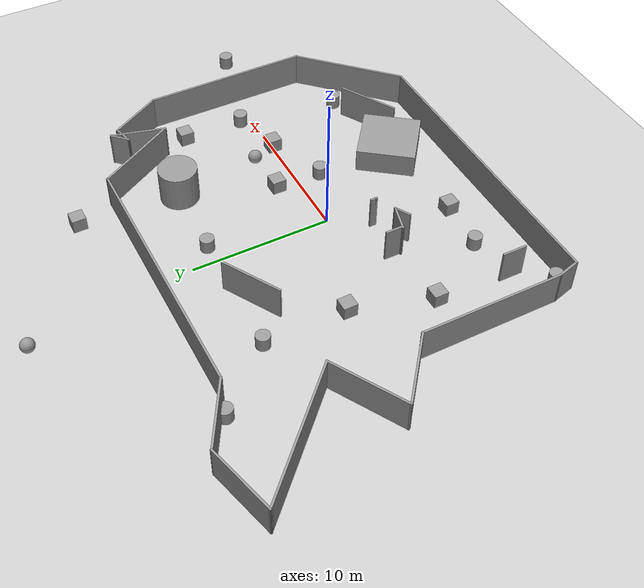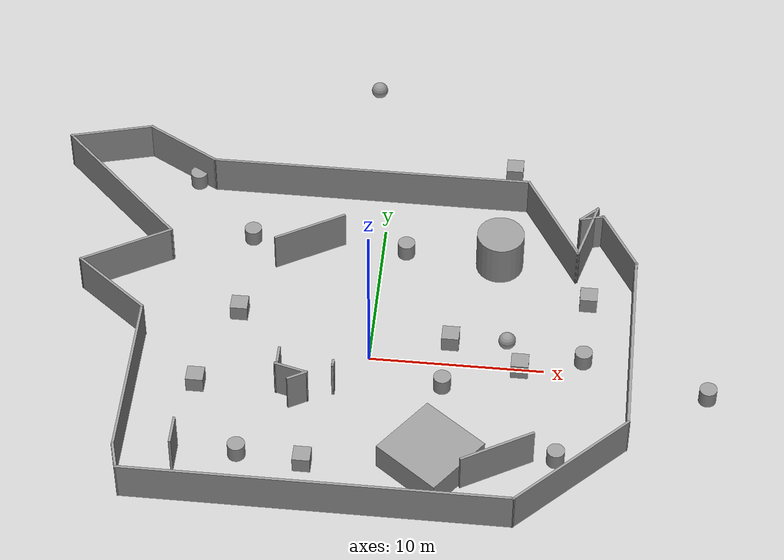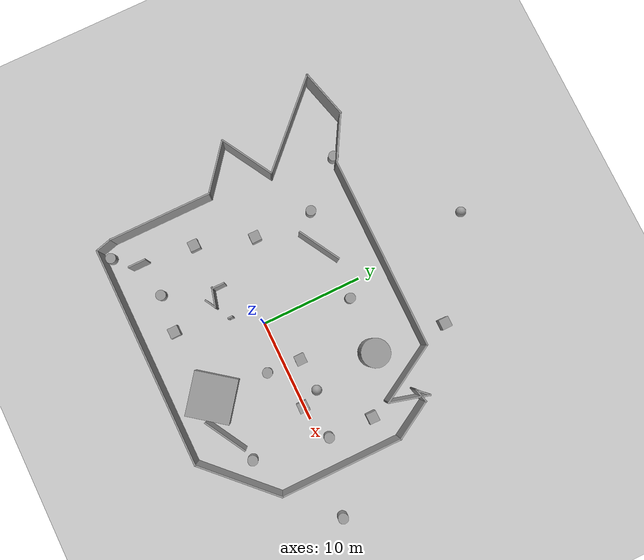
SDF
<sdf version="1.7">
 <world name="default">
  <light name="sun" type="directional">
   <pose>0 0 10 0 -0 0</pose>
   <diffuse>0.8 0.8 0.8 1</diffuse>
   <specular>0.2 0.2 0.2 1</specular>
   <attenuation>
    <range>1000</range>
    <constant>0.9</constant>
    <linear>0.01</linear>
    <quadratic>0.001</quadratic>
   </attenuation>
   <direction>-0.5 0.1 -0.9</direction>
   <spot><inner_angle>0</inner_angle><outer_angle>0</outer_angle><falloff>0</falloff></spot>
  </light>
  <model name="ground_plane">
   <static>1</static>
   <link name="link">
    <collision name="collision">
     <geometry><plane><normal>0 0 1</normal><size>100 100</size></plane></geometry>
     <surface>
      <contact><collide_bitmask>65535</collide_bitmask></contact>
      <friction><ode><mu>100</mu><mu2>50</mu2></ode></friction>
     </surface>
    </collision>
    <visual name="visual">
     <cast_shadows>0</cast_shadows>
     <geometry><plane><normal>0 0 1</normal><size>100 100</size></plane></geometry>
     <material>
      <script><uri>file://media/materials/scripts/gazebo.material</uri><name>Gazebo/Grey</name></script>
     </material>
    </visual>
   </link>
  </model>
  <gravity>0 0 -9.8</gravity>
  <magnetic_field>6e-06 2.3e-05 -4.2e-05</magnetic_field>
  <atmosphere type="adiabatic"/>
  <physics type="ode">
   <max_step_size>0.001</max_step_size>
   <real_time_factor>1</real_time_factor>
   <real_time_update_rate>1000</real_time_update_rate>
  </physics>
  <scene><ambient>0.4 0.4 0.4 1</ambient><background>0.7 0.7 0.7 1</background><shadows>1</shadows></scene>
  <spherical_coordinates>
   <surface_model>EARTH_WGS84</surface_model>
   <latitude_deg>0</latitude_deg>
   <longitude_deg>0</longitude_deg>
   <elevation>0</elevation>
   <heading_deg>0</heading_deg>
  </spherical_coordinates>
  <model name="unit_box">
   <pose>4.5393 1.58874 0.499995 0 -1e-05 0</pose>
   <link name="link">
    <inertial>
     <mass>1</mass>
     <inertia>
      <ixx>0.166667</ixx>
      <ixy>0</ixy>
      <ixz>0</ixz>
      <iyy>0.166667</iyy>
      <iyz>0</iyz>
      <izz>0.166667</izz>
     </inertia>
    </inertial>
    <collision name="collision"><geometry><box><size>1 1 1</size></box></geometry></collision>
    <visual name="visual">
     <geometry><box><size>1 1 1</size></box></geometry>
     <material>
      <script><name>Gazebo/Grey</name><uri>file://media/materials/scripts/gazebo.material</uri></script>
     </material>
    </visual>
   </link>
  </model>
  <model name="unit_cylinder">
   <pose>4.3301 -1.73186 0.499994 -4e-06 -3e-06 -0</pose>
   <link name="link">
    <inertial>
     <mass>1</mass>
     <inertia><ixx>0.145833</ixx><ixy>0</ixy><ixz>0</ixz><iyy>0.145833</iyy><iyz>0</iyz><izz>0.125</izz></inertia>
    </inertial>
    <collision name="collision">
     <geometry><cylinder><radius>0.5</radius><length>1</length></cylinder></geometry>
    </collision>
    <visual name="visual">
     <geometry><cylinder><radius>0.5</radius><length>1</length></cylinder></geometry>
     <material>
      <script><name>Gazebo/Grey</name><uri>file://media/materials/scripts/gazebo.material</uri></script>
     </material>
    </visual>
   </link>
  </model>
  <model name="unit_sphere">
   <pose>7.78616 1.73401 0.5 0 -0 0</pose>
   <link name="link">
    <inertial>
     <mass>1</mass>
     <inertia><ixx>0.1</ixx><ixy>0</ixy><ixz>0</ixz><iyy>0.1</iyy><iyz>0</iyz><izz>0.1</izz></inertia>
    </inertial>
    <collision name="collision"><geometry><sphere><radius>0.5</radius></sphere></geometry></collision>
    <visual name="visual">
     <geometry><sphere><radius>0.5</radius></sphere></geometry>
     <material>
      <script><name>Gazebo/Grey</name><uri>file://media/materials/scripts/gazebo.material</uri></script>
     </material>
    </visual>
   </link>
  </model>
  <model name="unit_box_0">
   <pose>8.61643 -0.081515 0.499995 -1e-05 -0 -0</pose>
   <link name="link">
    <inertial>
     <mass>1</mass>
     <inertia>
      <ixx>0.166667</ixx>
      <ixy>0</ixy>
      <ixz>0</ixz>
      <iyy>0.166667</iyy>
      <iyz>0</iyz>
      <izz>0.166667</izz>
     </inertia>
    </inertial>
    <collision name="collision"><geometry><box><size>1 1 1</size></box></geometry></collision>
    <visual name="visual">
     <geometry><box><size>1 1 1</size></box></geometry>
     <material>
      <script><name>Gazebo/Grey</name><uri>file://media/materials/scripts/gazebo.material</uri></script>
     </material>
    </visual>
   </link>
  </model>
  <model name="unit_cylinder_0">
   <pose>12.195 0.879591 0.499991 -2e-06 -1e-06 -0.002784</pose>
   <link name="link">
    <inertial>
     <mass>1</mass>
     <inertia><ixx>0.145833</ixx><ixy>0</ixy><ixz>0</ixz><iyy>0.145833</iyy><iyz>0</iyz><izz>0.125</izz></inertia>
    </inertial>
    <collision name="collision">
     <geometry><cylinder><radius>0.5</radius><length>1</length></cylinder></geometry>
    </collision>
    <visual name="visual">
     <geometry><cylinder><radius>0.5</radius><length>1</length></cylinder></geometry>
     <material>
      <script><name>Gazebo/Grey</name><uri>file://media/materials/scripts/gazebo.material</uri></script>
     </material>
    </visual>
   </link>
  </model>
  <model name="unit_box_1">
   <pose>12.2691 5.33119 0.499995 0 -1e-05 0</pose>
   <link name="link">
    <inertial>
     <mass>1</mass>
     <inertia>
      <ixx>0.166667</ixx>
      <ixy>0</ixy>
      <ixz>0</ixz>
      <iyy>0.166667</iyy>
      <iyz>0</iyz>
      <izz>0.166667</izz>
     </inertia>
    </inertial>
    <collision name="collision"><geometry><box><size>1 1 1</size></box></geometry></collision>
    <visual name="visual">
     <geometry><box><size>1 1 1</size></box></geometry>
     <material>
      <script><name>Gazebo/Grey</name><uri>file://media/materials/scripts/gazebo.material</uri></script>
     </material>
    </visual>
   </link>
  </model>
  <model name="unit_cylinder_1">
   <pose>11.0125 -6.40665 0.499996 4e-06 3e-06 -0</pose>
   <link name="link">
    <inertial>
     <mass>1</mass>
     <inertia><ixx>0.145833</ixx><ixy>0</ixy><ixz>0</ixz><iyy>0.145833</iyy><iyz>0</iyz><izz>0.125</izz></inertia>
    </inertial>
    <collision name="collision">
     <geometry><cylinder><radius>0.5</radius><length>1</length></cylinder></geometry>
    </collision>
    <visual name="visual">
     <geometry><cylinder><radius>0.5</radius><length>1</length></cylinder></geometry>
     <material>
      <script><name>Gazebo/Grey</name><uri>file://media/materials/scripts/gazebo.material</uri></script>
     </material>
    </visual>
   </link>
  </model>
  <model name="unit_cylinder_2">
   <pose>6.91652 8.01315 1.32166 0 -0 5e-06</pose>
   <link name="link">
    <inertial>
     <mass>1</mass>
     <inertia><ixx>0.145833</ixx><ixy>0</ixy><ixz>0</ixz><iyy>0.145833</iyy><iyz>0</iyz><izz>0.125</izz></inertia>
    </inertial>
    <collision name="collision">
     <geometry><cylinder><radius>1.38345</radius><length>2.64333</length></cylinder></geometry>
    </collision>
    <visual name="visual">
     <geometry><cylinder><radius>1.38345</radius><length>2.64333</length></cylinder></geometry>
     <material>
      <script><name>Gazebo/Grey</name><uri>file://media/materials/scripts/gazebo.material</uri></script>
     </material>
    </visual>
   </link>
  </model>
  <model name="unit_box_2">
   <pose>4.14628 -7.29838 0.865018 0 8e-06 -0.648429</pose>
   <link name="link">
    <inertial>
     <mass>1</mass>
     <inertia>
      <ixx>0.166667</ixx>
      <ixy>0</ixy>
      <ixz>0</ixz>
      <iyy>0.166667</iyy>
      <iyz>0</iyz>
      <izz>0.166667</izz>
     </inertia>
    </inertial>
    <collision name="collision"><geometry><box><size>4.27196 4.19667 1.73007</size></box></geometry></collision>
    <visual name="visual">
     <geometry><box><size>4.27196 4.19667 1.73007</size></box></geometry>
     <material>
      <script><name>Gazebo/Grey</name><uri>file://media/materials/scripts/gazebo.material</uri></script>
     </material>
    </visual>
   </link>
  </model>
  <model name="unit_cylinder_6">
   <pose>-11.822 -10.5105 0.499998 3e-06 -2e-06 0</pose>
   <link name="link">
    <inertial>
     <mass>1</mass>
     <inertia><ixx>0.145833</ixx><ixy>0</ixy><ixz>0</ixz><iyy>0.145833</iyy><iyz>0</iyz><izz>0.125</izz></inertia>
    </inertial>
    <collision name="collision">
     <geometry><cylinder><radius>0.5</radius><length>1</length></cylinder></geometry>
    </collision>
    <visual name="visual">
     <geometry><cylinder><radius>0.5</radius><length>1</length></cylinder></geometry>
     <material>
      <script><name>Gazebo/Grey</name><uri>file://media/materials/scripts/gazebo.material</uri></script>
     </material>
    </visual>
   </link>
  </model>
  <model name="unit_box_6">
   <pose>-9.57728 -2.87876 0.499995 0 1e-05 0</pose>
   <link name="link">
    <inertial>
     <mass>1</mass>
     <inertia>
      <ixx>0.166667</ixx>
      <ixy>0</ixy>
      <ixz>0</ixz>
      <iyy>0.166667</iyy>
      <iyz>0</iyz>
      <izz>0.166667</izz>
     </inertia>
    </inertial>
    <collision name="collision"><geometry><box><size>1 1 1</size></box></geometry></collision>
    <visual name="visual">
     <geometry><box><size>1 1 1</size></box></geometry>
     <material>
      <script><name>Gazebo/Grey</name><uri>file://media/materials/scripts/gazebo.material</uri></script>
     </material>
    </visual>
   </link>
  </model>
  <model name="unit_cylinder_7">
   <pose>-11.6369 12.8818 0.499998 3e-06 -2e-06 0</pose>
   <link name="link">
    <inertial>
     <mass>1</mass>
     <inertia><ixx>0.145833</ixx><ixy>0</ixy><ixz>0</ixz><iyy>0.145833</iyy><iyz>0</iyz><izz>0.125</izz></inertia>
    </inertial>
    <collision name="collision">
     <geometry><cylinder><radius>0.5</radius><length>1</length></cylinder></geometry>
    </collision>
    <visual name="visual">
     <geometry><cylinder><radius>0.5</radius><length>1</length></cylinder></geometry>
     <material>
      <script><name>Gazebo/Grey</name><uri>file://media/materials/scripts/gazebo.material</uri></script>
     </material>
    </visual>
   </link>
  </model>
  <model name="Untitled_0">
   <pose>-2.30018 1.95615 0 0 -0 0</pose>
   <link name="Wall_0">
    <collision name="Wall_0_Collision">
     <geometry><box><size>0.5 0.15 2.5</size></box></geometry>
     <pose>0 0 1.25 0 -0 0</pose>
    </collision>
    <visual name="Wall_0_Visual">
     <pose>0 0 1.25 0 -0 0</pose>
     <geometry><box><size>0.5 0.15 2.5</size></box></geometry>
     <material>
      <script><uri>file://media/materials/scripts/gazebo.material</uri><name>Gazebo/Grey</name></script>
      <ambient>1 1 1 1</ambient>
     </material>
     <meta><layer>0</layer></meta>
    </visual>
    <pose>0.540176 -4.55115 0 0 -0 -1.5708</pose>
   </link>
   <link name="Wall_1">
    <collision name="Wall_1_Collision">
     <geometry><box><size>0.15 0.15 2.5</size></box></geometry>
     <pose>0 0 1.25 0 -0 0</pose>
    </collision>
    <visual name="Wall_1_Visual">
     <pose>0 0 1.25 0 -0 0</pose>
     <geometry><box><size>0.15 0.15 2.5</size></box></geometry>
     <material>
      <script><uri>file://media/materials/scripts/gazebo.material</uri><name>Gazebo/Grey</name></script>
      <ambient>0 0 0 1</ambient>
     </material>
     <meta><layer>0</layer></meta>
    </visual>
    <pose>0.540176 -4.72615 0 0 -0 0</pose>
   </link>
   <link name="Wall_10">
    <collision name="Wall_10_Collision">
     <geometry><box><size>21.75 0.15 2.5</size></box></geometry>
     <pose>0 0 1.25 0 -0 0</pose>
    </collision>
    <visual name="Wall_10_Visual">
     <pose>0 0 1.25 0 -0 0</pose>
     <geometry><box><size>21.75 0.15 2.5</size></box></geometry>
     <material>
      <script><uri>file://media/materials/scripts/gazebo.material</uri><name>Gazebo/Grey</name></script>
      <ambient>1 1 1 1</ambient>
     </material>
     <meta><layer>0</layer></meta>
    </visual>
    <pose>0.448569 -13.056 0 0 -0 0</pose>
   </link>
   <link name="Wall_11">
    <collision name="Wall_11_Collision">
     <geometry><box><size>8.5 0.15 2.5</size></box></geometry>
     <pose>0 0 1.25 0 -0 0</pose>
    </collision>
    <visual name="Wall_11_Visual">
     <pose>0 0 1.25 0 -0 0</pose>
     <geometry><box><size>8.5 0.15 2.5</size></box></geometry>
     <material>
      <script><uri>file://media/materials/scripts/gazebo.material</uri><name>Gazebo/Grey</name></script>
      <ambient>1 1 1 1</ambient>
     </material>
     <meta><layer>0</layer></meta>
    </visual>
    <pose>14.2007 -10.1039 0 0 -0 0.785398</pose>
   </link>
   <link name="Wall_12">
    <collision name="Wall_12_Collision">
     <geometry><box><size>12 0.15 2.5</size></box></geometry>
     <pose>0 0 1.25 0 -0 0</pose>
    </collision>
    <visual name="Wall_12_Visual">
     <pose>0 0 1.25 0 -0 0</pose>
     <geometry><box><size>12 0.15 2.5</size></box></geometry>
     <material>
      <script><uri>file://media/materials/scripts/gazebo.material</uri><name>Gazebo/Grey</name></script>
      <ambient>1 1 1 1</ambient>
     </material>
     <meta><layer>0</layer></meta>
    </visual>
    <pose>17.1529 -1.22669 0 0 -0 1.5708</pose>
   </link>
   <link name="Wall_13">
    <collision name="Wall_13_Collision">
     <geometry><box><size>4.25 0.15 2.5</size></box></geometry>
     <pose>0 0 1.25 0 -0 0</pose>
    </collision>
    <visual name="Wall_13_Visual">
     <pose>0 0 1.25 0 -0 0</pose>
     <geometry><box><size>4.25 0.15 2.5</size></box></geometry>
     <material>
      <script><uri>file://media/materials/scripts/gazebo.material</uri><name>Gazebo/Grey</name></script>
      <ambient>1 1 1 1</ambient>
     </material>
     <meta><layer>0</layer></meta>
    </visual>
    <pose>16.1279 6.47366 0 0 -0 2.0944</pose>
   </link>
   <link name="Wall_14">
    <collision name="Wall_14_Collision">
     <geometry><box><size>1.5 0.15 2.5</size></box></geometry>
     <pose>0 0 1.25 0 -0 0</pose>
    </collision>
    <visual name="Wall_14_Visual">
     <pose>0 0 1.25 0 -0 0</pose>
     <geometry><box><size>1.5 0.15 2.5</size></box></geometry>
     <material>
      <script><uri>file://media/materials/scripts/gazebo.material</uri><name>Gazebo/Grey</name></script>
      <ambient>1 1 1 1</ambient>
     </material>
     <meta><layer>0</layer></meta>
    </visual>
    <pose>14.4509 8.07431 0 0 -0 -2.87979</pose>
   </link>
   <link name="Wall_15">
    <collision name="Wall_15_Collision">
     <geometry><box><size>1.5 0.15 2.5</size></box></geometry>
     <pose>0 0 1.25 0 -0 0</pose>
    </collision>
    <visual name="Wall_15_Visual">
     <pose>0 0 1.25 0 -0 0</pose>
     <geometry><box><size>1.5 0.15 2.5</size></box></geometry>
     <material>
      <script><uri>file://media/materials/scripts/gazebo.material</uri><name>Gazebo/Grey</name></script>
      <ambient>1 1 1 1</ambient>
     </material>
     <meta><layer>0</layer></meta>
    </visual>
    <pose>14.2762 8.3769 0 0 -0 0.785398</pose>
   </link>
   <link name="Wall_16">
    <collision name="Wall_16_Collision">
     <geometry><box><size>4 0.15 2.5</size></box></geometry>
     <pose>0 0 1.25 0 -0 0</pose>
    </collision>
    <visual name="Wall_16_Visual">
     <pose>0 0 1.25 0 -0 0</pose>
     <geometry><box><size>4 0.15 2.5</size></box></geometry>
     <material>
      <script><uri>file://media/materials/scripts/gazebo.material</uri><name>Gazebo/Grey</name></script>
      <ambient>1 1 1 1</ambient>
     </material>
     <meta><layer>0</layer></meta>
    </visual>
    <pose>14.2553 6.99479 0 0 -0 -1.8326</pose>
   </link>
   <link name="Wall_17">
    <collision name="Wall_17_Collision">
     <geometry><box><size>6.5 0.15 2.5</size></box></geometry>
     <pose>0 0 1.25 0 -0 0</pose>
    </collision>
    <visual name="Wall_17_Visual">
     <pose>0 0 1.25 0 -0 0</pose>
     <geometry><box><size>6.5 0.15 2.5</size></box></geometry>
     <material>
      <script><uri>file://media/materials/scripts/gazebo.material</uri><name>Gazebo/Grey</name></script>
      <ambient>1 1 1 1</ambient>
     </material>
     <meta><layer>0</layer></meta>
    </visual>
    <pose>12.1696 7.88502 0 0 -0 2.0944</pose>
   </link>
   <link name="Wall_18">
    <collision name="Wall_18_Collision">
     <geometry><box><size>19 0.15 2.5</size></box></geometry>
     <pose>0 0 1.25 0 -0 0</pose>
    </collision>
    <visual name="Wall_18_Visual">
     <pose>0 0 1.25 0 -0 0</pose>
     <geometry><box><size>19 0.15 2.5</size></box></geometry>
     <material>
      <script><uri>file://media/materials/scripts/gazebo.material</uri><name>Gazebo/Grey</name></script>
      <ambient>1 1 1 1</ambient>
     </material>
     <meta><layer>0</layer></meta>
    </visual>
    <pose>1.15705 10.6346 0 0 -0 3.14159</pose>
   </link>
   <link name="Wall_19">
    <collision name="Wall_19_Collision">
     <geometry><box><size>5 0.15 2.5</size></box></geometry>
     <pose>0 0 1.25 0 -0 0</pose>
    </collision>
    <visual name="Wall_19_Visual">
     <pose>0 0 1.25 0 -0 0</pose>
     <geometry><box><size>5 0.15 2.5</size></box></geometry>
     <material>
      <script><uri>file://media/materials/scripts/gazebo.material</uri><name>Gazebo/Grey</name></script>
      <ambient>1 1 1 1</ambient>
     </material>
     <meta><layer>0</layer></meta>
    </visual>
    <pose>-10.3681 11.8471 0 0 -0 2.61799</pose>
   </link>
   <link name="Wall_20">
    <collision name="Wall_20_Collision">
     <geometry><box><size>5 0.15 2.5</size></box></geometry>
     <pose>0 0 1.25 0 -0 0</pose>
    </collision>
    <visual name="Wall_20_Visual">
     <pose>0 0 1.25 0 -0 0</pose>
     <geometry><box><size>5 0.15 2.5</size></box></geometry>
     <material>
      <script><uri>file://media/materials/scripts/gazebo.material</uri><name>Gazebo/Grey</name></script>
      <ambient>1 1 1 1</ambient>
     </material>
     <meta><layer>0</layer></meta>
    </visual>
    <pose>-14.8105 12.432 0 0 -0 -2.87979</pose>
   </link>
   <link name="Wall_21">
    <collision name="Wall_21_Collision">
     <geometry><box><size>10.25 0.15 2.5</size></box></geometry>
     <pose>0 0 1.25 0 -0 0</pose>
    </collision>
    <visual name="Wall_21_Visual">
     <pose>0 0 1.25 0 -0 0</pose>
     <geometry><box><size>10.25 0.15 2.5</size></box></geometry>
     <material>
      <script><uri>file://media/materials/scripts/gazebo.material</uri><name>Gazebo/Grey</name></script>
      <ambient>1 1 1 1</ambient>
     </material>
     <meta><layer>0</layer></meta>
    </visual>
    <pose>-13.582 8.23349 0 0 -0 -0.785398</pose>
   </link>
   <link name="Wall_22">
    <collision name="Wall_22_Collision">
     <geometry><box><size>5.75 0.15 2.5</size></box></geometry>
     <pose>0 0 1.25 0 -0 0</pose>
    </collision>
    <visual name="Wall_22_Visual">
     <pose>0 0 1.25 0 -0 0</pose>
     <geometry><box><size>5.75 0.15 2.5</size></box></geometry>
     <material>
      <script><uri>file://media/materials/scripts/gazebo.material</uri><name>Gazebo/Grey</name></script>
      <ambient>1 1 1 1</ambient>
     </material>
     <meta><layer>0</layer></meta>
    </visual>
    <pose>-12.436 3.2626 0 0 -0 -2.61799</pose>
   </link>
   <link name="Wall_23">
    <collision name="Wall_23_Collision">
     <geometry><box><size>5.39264 0.15 2.5</size></box></geometry>
     <pose>0 0 1.25 0 -0 0</pose>
    </collision>
    <visual name="Wall_23_Visual">
     <pose>0 0 1.25 0 -0 0</pose>
     <geometry><box><size>5.39264 0.15 2.5</size></box></geometry>
     <material>
      <script><uri>file://media/materials/scripts/gazebo.material</uri><name>Gazebo/Grey</name></script>
      <ambient>1 1 1 1</ambient>
     </material>
     <meta><layer>0</layer></meta>
    </visual>
    <pose>-12.8132 0.226022 0 0 -0 -0.674276</pose>
   </link>
   <link name="Wall_25">
    <collision name="Wall_25_Collision">
     <geometry><box><size>4.5 0.15 2.5</size></box></geometry>
     <pose>0 0 1.25 0 -0 0</pose>
    </collision>
    <visual name="Wall_25_Visual">
     <pose>0 0 1.25 0 -0 0</pose>
     <geometry><box><size>4.5 0.15 2.5</size></box></geometry>
     <material>
      <script><uri>file://media/materials/scripts/gazebo.material</uri><name>Gazebo/Grey</name></script>
      <ambient>1 1 1 1</ambient>
     </material>
     <meta><layer>0</layer></meta>
    </visual>
    <pose>-1.95689 5.75214 0 0 -0 -2.61799</pose>
   </link>
   <link name="Wall_27">
    <collision name="Wall_27_Collision">
     <geometry><box><size>4.5 0.15 2.5</size></box></geometry>
     <pose>0 0 1.25 0 -0 0</pose>
    </collision>
    <visual name="Wall_27_Visual">
     <pose>0 0 1.25 0 -0 0</pose>
     <geometry><box><size>4.5 0.15 2.5</size></box></geometry>
     <material>
      <script><uri>file://media/materials/scripts/gazebo.material</uri><name>Gazebo/Grey</name></script>
      <ambient>1 1 1 1</ambient>
     </material>
     <meta><layer>0</layer></meta>
    </visual>
    <pose>10.1166 -9.54678 0 0 -0 0.523599</pose>
   </link>
   <link name="Wall_29">
    <collision name="Wall_29_Collision">
     <geometry><box><size>1.75 0.15 2.5</size></box></geometry>
     <pose>0 0 1.25 0 -0 0</pose>
    </collision>
    <visual name="Wall_29_Visual">
     <pose>0 0 1.25 0 -0 0</pose>
     <geometry><box><size>1.75 0.15 2.5</size></box></geometry>
     <material>
      <script><uri>file://media/materials/scripts/gazebo.material</uri><name>Gazebo/Grey</name></script>
      <ambient>1 1 1 1</ambient>
     </material>
     <meta><layer>0</layer></meta>
    </visual>
    <pose>-7.70274 -10.2037 0 0 -0 -1.5708</pose>
   </link>
   <link name="Wall_3">
    <collision name="Wall_3_Collision">
     <geometry><box><size>1.25 0.15 2.5</size></box></geometry>
     <pose>0 0 1.25 0 -0 0</pose>
    </collision>
    <visual name="Wall_3_Visual">
     <pose>0 0 1.25 0 -0 0</pose>
     <geometry><box><size>1.25 0.15 2.5</size></box></geometry>
     <material>
      <script><uri>file://media/materials/scripts/gazebo.material</uri><name>Gazebo/Grey</name></script>
      <ambient>1 1 1 1</ambient>
     </material>
     <meta><layer>0</layer></meta>
    </visual>
    <pose>-2.57982 -4.29615 0 0 -0 -1.5708</pose>
   </link>
   <link name="Wall_4">
    <collision name="Wall_4_Collision">
     <geometry><box><size>0.25 0.15 2.5</size></box></geometry>
     <pose>0 0 1.25 0 -0 0</pose>
    </collision>
    <visual name="Wall_4_Visual">
     <pose>0 0 1.25 0 -0 0</pose>
     <geometry><box><size>0.25 0.15 2.5</size></box></geometry>
     <material>
      <script><uri>file://media/materials/scripts/gazebo.material</uri><name>Gazebo/Grey</name></script>
      <ambient>1 1 1 1</ambient>
     </material>
     <meta><layer>0</layer></meta>
    </visual>
    <pose>-2.62313 -4.87115 0 0 -0 -2.61799</pose>
   </link>
   <link name="Wall_5">
    <collision name="Wall_5_Collision">
     <geometry><box><size>2 0.15 2.5</size></box></geometry>
     <pose>0 0 1.25 0 -0 0</pose>
    </collision>
    <visual name="Wall_5_Visual">
     <pose>0 0 1.25 0 -0 0</pose>
     <geometry><box><size>2 0.15 2.5</size></box></geometry>
     <material>
      <script><uri>file://media/materials/scripts/gazebo.material</uri><name>Gazebo/Grey</name></script>
      <ambient>1 1 1 1</ambient>
     </material>
     <meta><layer>0</layer></meta>
    </visual>
    <pose>-1.77294 -5.13555 0 0 -0 -0.261799</pose>
   </link>
   <link name="Wall_6">
    <collision name="Wall_6_Collision">
     <geometry><box><size>1.25 0.15 2.5</size></box></geometry>
     <pose>0 0 1.25 0 -0 0</pose>
    </collision>
    <visual name="Wall_6_Visual">
     <pose>0 0 1.25 0 -0 0</pose>
     <geometry><box><size>1.25 0.15 2.5</size></box></geometry>
     <material>
      <script><uri>file://media/materials/scripts/gazebo.material</uri><name>Gazebo/Grey</name></script>
      <ambient>1 1 1 1</ambient>
     </material>
     <meta><layer>0</layer></meta>
    </visual>
    <pose>-1.35578 -5.64996 0 0 -0 -2.61799</pose>
   </link>
   <link name="Wall_8">
    <collision name="Wall_8_Collision">
     <geometry><box><size>10.25 0.15 2.5</size></box></geometry>
     <pose>0 0 1.25 0 -0 0</pose>
    </collision>
    <visual name="Wall_8_Visual">
     <pose>0 0 1.25 0 -0 0</pose>
     <geometry><box><size>10.25 0.15 2.5</size></box></geometry>
     <material>
      <script><uri>file://media/materials/scripts/gazebo.material</uri><name>Gazebo/Grey</name></script>
      <ambient>1 1 1 1</ambient>
     </material>
     <meta><layer>0</layer></meta>
    </visual>
    <pose>-10.7655 -6.46055 0 0 -0 -1.5708</pose>
   </link>
   <link name="Wall_9">
    <collision name="Wall_9_Collision">
     <geometry><box><size>1.75 0.15 2.5</size></box></geometry>
     <pose>0 0 1.25 0 -0 0</pose>
    </collision>
    <visual name="Wall_9_Visual">
     <pose>0 0 1.25 0 -0 0</pose>
     <geometry><box><size>1.75 0.15 2.5</size></box></geometry>
     <material>
      <script><uri>file://media/materials/scripts/gazebo.material</uri><name>Gazebo/Grey</name></script>
      <ambient>1 1 1 1</ambient>
     </material>
     <meta><layer>0</layer></meta>
    </visual>
    <pose>-10.5585 -12.2833 0 0 -0 -1.309</pose>
   </link>
   <static>1</static>
  </model>
  <model name="unit_box_3">
   <pose>7.33857 15.3465 0.499995 -1e-05 -0 -0</pose>
   <link name="link">
    <inertial>
     <mass>1</mass>
     <inertia>
      <ixx>0.166667</ixx>
      <ixy>0</ixy>
      <ixz>0</ixz>
      <iyy>0.166667</iyy>
      <iyz>0</iyz>
      <izz>0.166667</izz>
     </inertia>
    </inertial>
    <collision name="collision"><geometry><box><size>1 1 1</size></box></geometry></collision>
    <visual name="visual">
     <geometry><box><size>1 1 1</size></box></geometry>
     <material>
      <script><name>Gazebo/Grey</name><uri>file://media/materials/scripts/gazebo.material</uri></script>
     </material>
    </visual>
   </link>
  </model>
  <model name="unit_cylinder_3">
   <pose>19.2974 -1.15108 0.499998 3e-06 -4e-06 0</pose>
   <link name="link">
    <inertial>
     <mass>1</mass>
     <inertia><ixx>0.145833</ixx><ixy>0</ixy><ixz>0</ixz><iyy>0.145833</iyy><iyz>0</iyz><izz>0.125</izz></inertia>
    </inertial>
    <collision name="collision">
     <geometry><cylinder><radius>0.5</radius><length>1</length></cylinder></geometry>
    </collision>
    <visual name="visual">
     <geometry><cylinder><radius>0.5</radius><length>1</length></cylinder></geometry>
     <material>
      <script><name>Gazebo/Grey</name><uri>file://media/materials/scripts/gazebo.material</uri></script>
     </material>
    </visual>
   </link>
  </model>
  <model name="unit_box_4">
   <pose>-7.80759 2.71622 0.499995 -1e-05 -0 -0</pose>
   <link name="link">
    <inertial>
     <mass>1</mass>
     <inertia>
      <ixx>0.166667</ixx>
      <ixy>0</ixy>
      <ixz>0</ixz>
      <iyy>0.166667</iyy>
      <iyz>0</iyz>
      <izz>0.166667</izz>
     </inertia>
    </inertial>
    <collision name="collision"><geometry><box><size>1 1 1</size></box></geometry></collision>
    <visual name="visual">
     <geometry><box><size>1 1 1</size></box></geometry>
     <material>
      <script><name>Gazebo/Grey</name><uri>file://media/materials/scripts/gazebo.material</uri></script>
     </material>
    </visual>
   </link>
  </model>
  <model name="unit_cylinder_4">
   <pose>-7.78388 8.61736 0.499993 -3e-06 -3e-06 0</pose>
   <link name="link">
    <inertial>
     <mass>1</mass>
     <inertia><ixx>0.145833</ixx><ixy>0</ixy><ixz>0</ixz><iyy>0.145833</iyy><iyz>0</iyz><izz>0.125</izz></inertia>
    </inertial>
    <collision name="collision">
     <geometry><cylinder><radius>0.5</radius><length>1</length></cylinder></geometry>
    </collision>
    <visual name="visual">
     <geometry><cylinder><radius>0.5</radius><length>1</length></cylinder></geometry>
     <material>
      <script><name>Gazebo/Grey</name><uri>file://media/materials/scripts/gazebo.material</uri></script>
     </material>
    </visual>
   </link>
  </model>
  <model name="unit_sphere_0">
   <pose>-1.53712 21.6128 0.5 0 -0 0</pose>
   <link name="link">
    <inertial>
     <mass>1</mass>
     <inertia><ixx>0.1</ixx><ixy>0</ixy><ixz>0</ixz><iyy>0.1</iyy><iyz>0</iyz><izz>0.1</izz></inertia>
    </inertial>
    <collision name="collision"><geometry><sphere><radius>0.5</radius></sphere></geometry></collision>
    <visual name="visual">
     <geometry><sphere><radius>0.5</radius></sphere></geometry>
     <material>
      <script><name>Gazebo/Grey</name><uri>file://media/materials/scripts/gazebo.material</uri></script>
     </material>
    </visual>
   </link>
  </model>
  <model name="unit_box_5">
   <pose>-2.89845 -8.01507 0.499995 0 1e-05 0</pose>
   <link name="link">
    <inertial>
     <mass>1</mass>
     <inertia>
      <ixx>0.166667</ixx>
      <ixy>0</ixy>
      <ixz>0</ixz>
      <iyy>0.166667</iyy>
      <iyz>0</iyz>
      <izz>0.166667</izz>
     </inertia>
    </inertial>
    <collision name="collision"><geometry><box><size>1 1 1</size></box></geometry></collision>
    <visual name="visual">
     <geometry><box><size>1 1 1</size></box></geometry>
     <material>
      <script><name>Gazebo/Grey</name><uri>file://media/materials/scripts/gazebo.material</uri></script>
     </material>
    </visual>
   </link>
  </model>
  <model name="unit_cylinder_5">
   <pose>-6.59449 -7.69205 0.499993 -3e-06 -4e-06 -0</pose>
   <link name="link">
    <inertial>
     <mass>1</mass>
     <inertia><ixx>0.145833</ixx><ixy>0</ixy><ixz>0</ixz><iyy>0.145833</iyy><iyz>0</iyz><izz>0.125</izz></inertia>
    </inertial>
    <collision name="collision">
     <geometry><cylinder><radius>0.5</radius><length>1</length></cylinder></geometry>
    </collision>
    <visual name="visual">
     <geometry><cylinder><radius>0.5</radius><length>1</length></cylinder></geometry>
     <material>
      <script><name>Gazebo/Grey</name><uri>file://media/materials/scripts/gazebo.material</uri></script>
     </material>
    </visual>
   </link>
  </model>
  <model name="unit_cylinder_8">
   <pose>1.36922 8.34271 0.499997 3e-06 4e-06 -0</pose>
   <link name="link">
    <inertial>
     <mass>1</mass>
     <inertia><ixx>0.145833</ixx><ixy>0</ixy><ixz>0</ixz><iyy>0.145833</iyy><iyz>0</iyz><izz>0.125</izz></inertia>
    </inertial>
    <collision name="collision">
     <geometry><cylinder><radius>0.5</radius><length>1</length></cylinder></geometry>
    </collision>
    <visual name="visual">
     <geometry><cylinder><radius>0.5</radius><length>1</length></cylinder></geometry>
     <material>
      <script><name>Gazebo/Grey</name><uri>file://media/materials/scripts/gazebo.material</uri></script>
     </material>
    </visual>
   </link>
  </model>
 </world>
</sdf>
